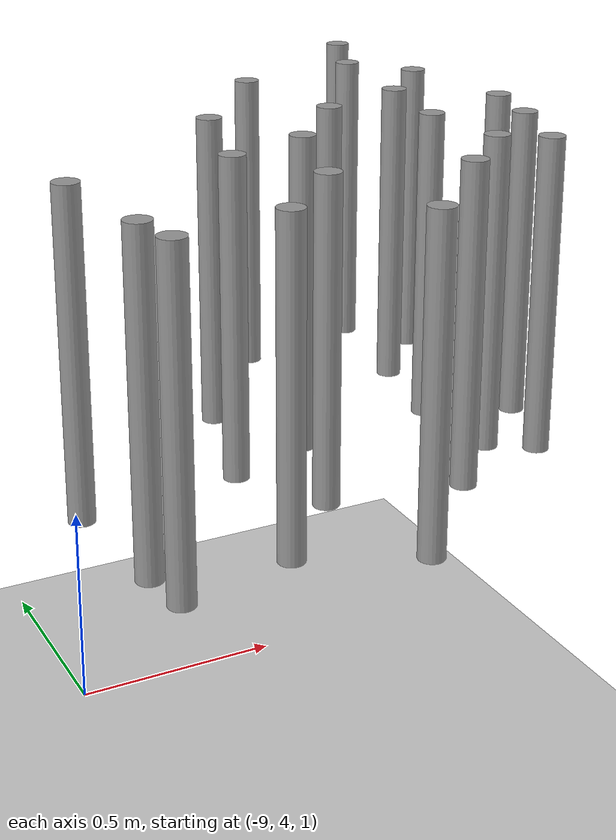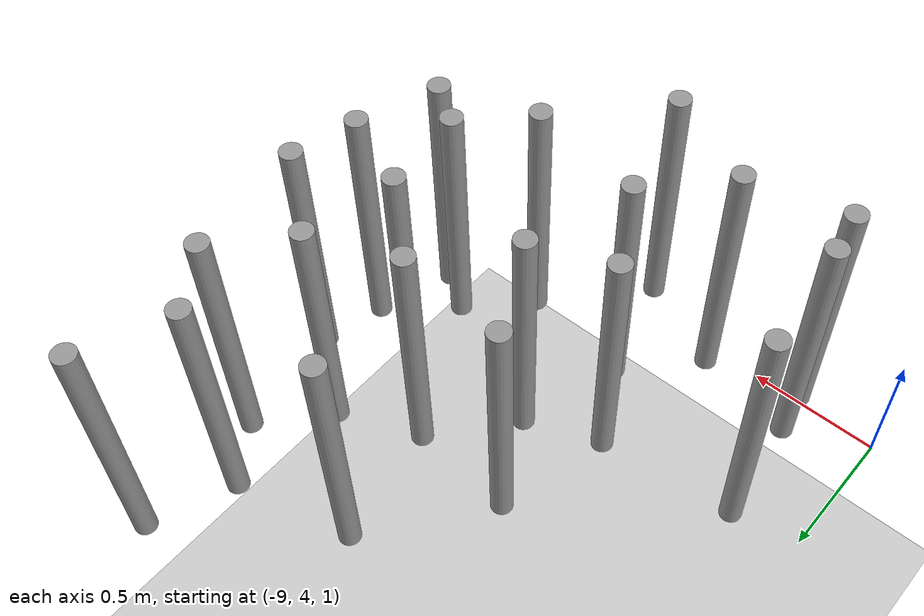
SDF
<sdf version="1.6">
 <world name="default">
  <model name="ground_plane">
   <static>1</static>
   <link name="link">
    <collision name="collision">
     <geometry><plane><normal>0 0 1</normal><size>100 100</size></plane></geometry>
     <surface>
      <contact><collide_bitmask>65535</collide_bitmask></contact>
      <friction><ode><mu>100</mu><mu2>50</mu2></ode></friction>
     </surface>
    </collision>
    <visual name="visual">
     <cast_shadows>0</cast_shadows>
     <geometry><plane><normal>0 0 1</normal><size>100 100</size></plane></geometry>
     <material>
      <script><uri>file://media/materials/scripts/gazebo.material</uri><name>Gazebo/Grey</name></script>
     </material>
    </visual>
   </link>
  </model>
  <model name="unit_cylinder_clone_16">
   <link name="link">
    <inertial>
     <mass>10000.1</mass>
     <inertia><ixx>837.395</ixx><ixy>0</ixy><ixz>0</ixz><iyy>837.395</iyy><iyz>0</iyz><izz>8.09922</izz></inertia>
    </inertial>
    <visual name="visual">
     <geometry><cylinder><radius>0.0402468</radius><length>1</length></cylinder></geometry>
     <material>
      <script><name>Gazebo/Grey</name><uri>file://media/materials/scripts/gazebo.material</uri></script>
      <shader type="vertex"><normal_map>__default__</normal_map></shader>
     </material>
    </visual>
    <collision name="collision">
     <geometry><cylinder><radius>0.040247</radius><length>1</length></cylinder></geometry>
     <surface>
      <friction>
       <ode><mu>1</mu><mu2>1</mu2><fdir1>0 0 0</fdir1><slip1>0</slip1><slip2>0</slip2></ode>
       <torsional>
        <coefficient>1</coefficient>
        <patch_radius>0</patch_radius>
        <surface_radius>0</surface_radius>
        <use_patch_radius>1</use_patch_radius>
        <ode><slip>0</slip></ode>
       </torsional>
      </friction>
      <bounce><restitution_coefficient>0</restitution_coefficient><threshold>1e+06</threshold></bounce>
      <contact>
       <collide_without_contact>0</collide_without_contact>
       <collide_without_contact_bitmask>1</collide_without_contact_bitmask>
       <collide_bitmask>1</collide_bitmask>
       <ode>
        <soft_cfm>0</soft_cfm>
        <soft_erp>0.2</soft_erp>
        <kp>1e+13</kp>
        <kd>1</kd>
        <max_vel>0.01</max_vel>
        <min_depth>0</min_depth>
       </ode>
       <bullet>
        <split_impulse>1</split_impulse>
        <split_impulse_penetration_threshold>-0.01</split_impulse_penetration_threshold>
        <soft_cfm>0</soft_cfm>
        <soft_erp>0.2</soft_erp>
        <kp>1e+13</kp>
        <kd>1</kd>
       </bullet>
      </contact>
     </surface>
    </collision>
   </link>
   <static>0</static>
   <pose>-7.3486 4.45543 1.63725 0 1e-06 -0.000391</pose>
  </model>
  <model name="unit_cylinder_clone_16_clone">
   <link name="link">
    <inertial>
     <mass>10000.1</mass>
     <inertia><ixx>837.395</ixx><ixy>0</ixy><ixz>0</ixz><iyy>837.395</iyy><iyz>0</iyz><izz>8.09922</izz></inertia>
    </inertial>
    <visual name="visual">
     <geometry><cylinder><radius>0.0402468</radius><length>1</length></cylinder></geometry>
     <material>
      <script><name>Gazebo/Grey</name><uri>file://media/materials/scripts/gazebo.material</uri></script>
      <shader type="vertex"><normal_map>__default__</normal_map></shader>
     </material>
    </visual>
    <collision name="collision">
     <geometry><cylinder><radius>0.040247</radius><length>1</length></cylinder></geometry>
     <surface>
      <friction>
       <ode><mu>1</mu><mu2>1</mu2><fdir1>0 0 0</fdir1><slip1>0</slip1><slip2>0</slip2></ode>
       <torsional>
        <coefficient>1</coefficient>
        <patch_radius>0</patch_radius>
        <surface_radius>0</surface_radius>
        <use_patch_radius>1</use_patch_radius>
        <ode><slip>0</slip></ode>
       </torsional>
      </friction>
      <bounce><restitution_coefficient>0</restitution_coefficient><threshold>1e+06</threshold></bounce>
      <contact>
       <collide_without_contact>0</collide_without_contact>
       <collide_without_contact_bitmask>1</collide_without_contact_bitmask>
       <collide_bitmask>1</collide_bitmask>
       <ode>
        <soft_cfm>0</soft_cfm>
        <soft_erp>0.2</soft_erp>
        <kp>1e+13</kp>
        <kd>1</kd>
        <max_vel>0.01</max_vel>
        <min_depth>0</min_depth>
       </ode>
       <bullet>
        <split_impulse>1</split_impulse>
        <split_impulse_penetration_threshold>-0.01</split_impulse_penetration_threshold>
        <soft_cfm>0</soft_cfm>
        <soft_erp>0.2</soft_erp>
        <kp>1e+13</kp>
        <kd>1</kd>
       </bullet>
      </contact>
     </surface>
    </collision>
   </link>
   <static>0</static>
   <pose>-8.77538 4.62833 1.63725 -1e-06 9e-06 -0.000754</pose>
  </model>
  <model name="unit_cylinder_clone_16_clone_0">
   <link name="link">
    <inertial>
     <mass>10000.1</mass>
     <inertia><ixx>837.395</ixx><ixy>0</ixy><ixz>0</ixz><iyy>837.395</iyy><iyz>0</iyz><izz>8.09922</izz></inertia>
    </inertial>
    <visual name="visual">
     <geometry><cylinder><radius>0.0402468</radius><length>1</length></cylinder></geometry>
     <material>
      <script><name>Gazebo/Grey</name><uri>file://media/materials/scripts/gazebo.material</uri></script>
      <shader type="vertex"><normal_map>__default__</normal_map></shader>
     </material>
    </visual>
    <collision name="collision">
     <geometry><cylinder><radius>0.040247</radius><length>1</length></cylinder></geometry>
     <surface>
      <friction>
       <ode><mu>1</mu><mu2>1</mu2><fdir1>0 0 0</fdir1><slip1>0</slip1><slip2>0</slip2></ode>
       <torsional>
        <coefficient>1</coefficient>
        <patch_radius>0</patch_radius>
        <surface_radius>0</surface_radius>
        <use_patch_radius>1</use_patch_radius>
        <ode><slip>0</slip></ode>
       </torsional>
      </friction>
      <bounce><restitution_coefficient>0</restitution_coefficient><threshold>1e+06</threshold></bounce>
      <contact>
       <collide_without_contact>0</collide_without_contact>
       <collide_without_contact_bitmask>1</collide_without_contact_bitmask>
       <collide_bitmask>1</collide_bitmask>
       <ode>
        <soft_cfm>0</soft_cfm>
        <soft_erp>0.2</soft_erp>
        <kp>1e+13</kp>
        <kd>1</kd>
        <max_vel>0.01</max_vel>
        <min_depth>0</min_depth>
       </ode>
       <bullet>
        <split_impulse>1</split_impulse>
        <split_impulse_penetration_threshold>-0.01</split_impulse_penetration_threshold>
        <soft_cfm>0</soft_cfm>
        <soft_erp>0.2</soft_erp>
        <kp>1e+13</kp>
        <kd>1</kd>
       </bullet>
      </contact>
     </surface>
    </collision>
   </link>
   <static>0</static>
   <pose>-8.26675 4.68609 1.63725 -0 -2e-06 -0.000138</pose>
  </model>
  <model name="unit_cylinder_clone_16_clone_1">
   <link name="link">
    <inertial>
     <mass>10000.1</mass>
     <inertia><ixx>837.395</ixx><ixy>0</ixy><ixz>0</ixz><iyy>837.395</iyy><iyz>0</iyz><izz>8.09922</izz></inertia>
    </inertial>
    <visual name="visual">
     <geometry><cylinder><radius>0.0402468</radius><length>1</length></cylinder></geometry>
     <material>
      <script><name>Gazebo/Grey</name><uri>file://media/materials/scripts/gazebo.material</uri></script>
      <shader type="vertex"><normal_map>__default__</normal_map></shader>
     </material>
    </visual>
    <collision name="collision">
     <geometry><cylinder><radius>0.040247</radius><length>1</length></cylinder></geometry>
     <surface>
      <friction>
       <ode><mu>1</mu><mu2>1</mu2><fdir1>0 0 0</fdir1><slip1>0</slip1><slip2>0</slip2></ode>
       <torsional>
        <coefficient>1</coefficient>
        <patch_radius>0</patch_radius>
        <surface_radius>0</surface_radius>
        <use_patch_radius>1</use_patch_radius>
        <ode><slip>0</slip></ode>
       </torsional>
      </friction>
      <bounce><restitution_coefficient>0</restitution_coefficient><threshold>1e+06</threshold></bounce>
      <contact>
       <collide_without_contact>0</collide_without_contact>
       <collide_without_contact_bitmask>1</collide_without_contact_bitmask>
       <collide_bitmask>1</collide_bitmask>
       <ode>
        <soft_cfm>0</soft_cfm>
        <soft_erp>0.2</soft_erp>
        <kp>1e+13</kp>
        <kd>1</kd>
        <max_vel>0.01</max_vel>
        <min_depth>0</min_depth>
       </ode>
       <bullet>
        <split_impulse>1</split_impulse>
        <split_impulse_penetration_threshold>-0.01</split_impulse_penetration_threshold>
        <soft_cfm>0</soft_cfm>
        <soft_erp>0.2</soft_erp>
        <kp>1e+13</kp>
        <kd>1</kd>
       </bullet>
      </contact>
     </surface>
    </collision>
   </link>
   <static>0</static>
   <pose>-7.51513 4.85463 1.63725 0 1e-06 -0.0007</pose>
  </model>
  <model name="unit_cylinder_clone_16_clone_2">
   <link name="link">
    <inertial>
     <mass>10000.1</mass>
     <inertia><ixx>837.395</ixx><ixy>0</ixy><ixz>0</ixz><iyy>837.395</iyy><iyz>0</iyz><izz>8.09922</izz></inertia>
    </inertial>
    <visual name="visual">
     <geometry><cylinder><radius>0.0402468</radius><length>1</length></cylinder></geometry>
     <material>
      <script><name>Gazebo/Grey</name><uri>file://media/materials/scripts/gazebo.material</uri></script>
      <shader type="vertex"><normal_map>__default__</normal_map></shader>
     </material>
    </visual>
    <collision name="collision">
     <geometry><cylinder><radius>0.040247</radius><length>1</length></cylinder></geometry>
     <surface>
      <friction>
       <ode><mu>1</mu><mu2>1</mu2><fdir1>0 0 0</fdir1><slip1>0</slip1><slip2>0</slip2></ode>
       <torsional>
        <coefficient>1</coefficient>
        <patch_radius>0</patch_radius>
        <surface_radius>0</surface_radius>
        <use_patch_radius>1</use_patch_radius>
        <ode><slip>0</slip></ode>
       </torsional>
      </friction>
      <bounce><restitution_coefficient>0</restitution_coefficient><threshold>1e+06</threshold></bounce>
      <contact>
       <collide_without_contact>0</collide_without_contact>
       <collide_without_contact_bitmask>1</collide_without_contact_bitmask>
       <collide_bitmask>1</collide_bitmask>
       <ode>
        <soft_cfm>0</soft_cfm>
        <soft_erp>0.2</soft_erp>
        <kp>1e+13</kp>
        <kd>1</kd>
        <max_vel>0.01</max_vel>
        <min_depth>0</min_depth>
       </ode>
       <bullet>
        <split_impulse>1</split_impulse>
        <split_impulse_penetration_threshold>-0.01</split_impulse_penetration_threshold>
        <soft_cfm>0</soft_cfm>
        <soft_erp>0.2</soft_erp>
        <kp>1e+13</kp>
        <kd>1</kd>
       </bullet>
      </contact>
     </surface>
    </collision>
   </link>
   <static>0</static>
   <pose>-8.15207 5.10482 1.63725 -0 -2e-06 -0.000138</pose>
  </model>
  <model name="unit_cylinder_clone_16_clone_3">
   <link name="link">
    <inertial>
     <mass>10000.1</mass>
     <inertia><ixx>837.395</ixx><ixy>0</ixy><ixz>0</ixz><iyy>837.395</iyy><iyz>0</iyz><izz>8.09922</izz></inertia>
    </inertial>
    <visual name="visual">
     <geometry><cylinder><radius>0.0402468</radius><length>1</length></cylinder></geometry>
     <material>
      <script><name>Gazebo/Grey</name><uri>file://media/materials/scripts/gazebo.material</uri></script>
      <shader type="vertex"><normal_map>__default__</normal_map></shader>
     </material>
    </visual>
    <collision name="collision">
     <geometry><cylinder><radius>0.040247</radius><length>1</length></cylinder></geometry>
     <surface>
      <friction>
       <ode><mu>1</mu><mu2>1</mu2><fdir1>0 0 0</fdir1><slip1>0</slip1><slip2>0</slip2></ode>
       <torsional>
        <coefficient>1</coefficient>
        <patch_radius>0</patch_radius>
        <surface_radius>0</surface_radius>
        <use_patch_radius>1</use_patch_radius>
        <ode><slip>0</slip></ode>
       </torsional>
      </friction>
      <bounce><restitution_coefficient>0</restitution_coefficient><threshold>1e+06</threshold></bounce>
      <contact>
       <collide_without_contact>0</collide_without_contact>
       <collide_without_contact_bitmask>1</collide_without_contact_bitmask>
       <collide_bitmask>1</collide_bitmask>
       <ode>
        <soft_cfm>0</soft_cfm>
        <soft_erp>0.2</soft_erp>
        <kp>1e+13</kp>
        <kd>1</kd>
        <max_vel>0.01</max_vel>
        <min_depth>0</min_depth>
       </ode>
       <bullet>
        <split_impulse>1</split_impulse>
        <split_impulse_penetration_threshold>-0.01</split_impulse_penetration_threshold>
        <soft_cfm>0</soft_cfm>
        <soft_erp>0.2</soft_erp>
        <kp>1e+13</kp>
        <kd>1</kd>
       </bullet>
      </contact>
     </surface>
    </collision>
   </link>
   <static>0</static>
   <pose>-7.75658 5.07348 1.63725 -0 2e-06 -0.000198</pose>
  </model>
  <model name="unit_cylinder_clone_16_clone_4">
   <link name="link">
    <inertial>
     <mass>10000.1</mass>
     <inertia><ixx>837.395</ixx><ixy>0</ixy><ixz>0</ixz><iyy>837.395</iyy><iyz>0</iyz><izz>8.09922</izz></inertia>
    </inertial>
    <visual name="visual">
     <geometry><cylinder><radius>0.0402468</radius><length>1</length></cylinder></geometry>
     <material>
      <script><name>Gazebo/Grey</name><uri>file://media/materials/scripts/gazebo.material</uri></script>
      <shader type="vertex"><normal_map>__default__</normal_map></shader>
     </material>
    </visual>
    <collision name="collision">
     <geometry><cylinder><radius>0.040247</radius><length>1</length></cylinder></geometry>
     <surface>
      <friction>
       <ode><mu>1</mu><mu2>1</mu2><fdir1>0 0 0</fdir1><slip1>0</slip1><slip2>0</slip2></ode>
       <torsional>
        <coefficient>1</coefficient>
        <patch_radius>0</patch_radius>
        <surface_radius>0</surface_radius>
        <use_patch_radius>1</use_patch_radius>
        <ode><slip>0</slip></ode>
       </torsional>
      </friction>
      <bounce><restitution_coefficient>0</restitution_coefficient><threshold>1e+06</threshold></bounce>
      <contact>
       <collide_without_contact>0</collide_without_contact>
       <collide_without_contact_bitmask>1</collide_without_contact_bitmask>
       <collide_bitmask>1</collide_bitmask>
       <ode>
        <soft_cfm>0</soft_cfm>
        <soft_erp>0.2</soft_erp>
        <kp>1e+13</kp>
        <kd>1</kd>
        <max_vel>0.01</max_vel>
        <min_depth>0</min_depth>
       </ode>
       <bullet>
        <split_impulse>1</split_impulse>
        <split_impulse_penetration_threshold>-0.01</split_impulse_penetration_threshold>
        <soft_cfm>0</soft_cfm>
        <soft_erp>0.2</soft_erp>
        <kp>1e+13</kp>
        <kd>1</kd>
       </bullet>
      </contact>
     </surface>
    </collision>
   </link>
   <static>0</static>
   <pose>-7.99203 4.79193 1.63725 1e-06 -1e-06 -0.000676</pose>
  </model>
  <model name="unit_cylinder_clone_16_clone_5">
   <link name="link">
    <inertial>
     <mass>10000.1</mass>
     <inertia><ixx>837.395</ixx><ixy>0</ixy><ixz>0</ixz><iyy>837.395</iyy><iyz>0</iyz><izz>8.09922</izz></inertia>
    </inertial>
    <visual name="visual">
     <geometry><cylinder><radius>0.0402468</radius><length>1</length></cylinder></geometry>
     <material>
      <script><name>Gazebo/Grey</name><uri>file://media/materials/scripts/gazebo.material</uri></script>
      <shader type="vertex"><normal_map>__default__</normal_map></shader>
     </material>
    </visual>
    <collision name="collision">
     <geometry><cylinder><radius>0.040247</radius><length>1</length></cylinder></geometry>
     <surface>
      <friction>
       <ode><mu>1</mu><mu2>1</mu2><fdir1>0 0 0</fdir1><slip1>0</slip1><slip2>0</slip2></ode>
       <torsional>
        <coefficient>1</coefficient>
        <patch_radius>0</patch_radius>
        <surface_radius>0</surface_radius>
        <use_patch_radius>1</use_patch_radius>
        <ode><slip>0</slip></ode>
       </torsional>
      </friction>
      <bounce><restitution_coefficient>0</restitution_coefficient><threshold>1e+06</threshold></bounce>
      <contact>
       <collide_without_contact>0</collide_without_contact>
       <collide_without_contact_bitmask>1</collide_without_contact_bitmask>
       <collide_bitmask>1</collide_bitmask>
       <ode>
        <soft_cfm>0</soft_cfm>
        <soft_erp>0.2</soft_erp>
        <kp>1e+13</kp>
        <kd>1</kd>
        <max_vel>0.01</max_vel>
        <min_depth>0</min_depth>
       </ode>
       <bullet>
        <split_impulse>1</split_impulse>
        <split_impulse_penetration_threshold>-0.01</split_impulse_penetration_threshold>
        <soft_cfm>0</soft_cfm>
        <soft_erp>0.2</soft_erp>
        <kp>1e+13</kp>
        <kd>1</kd>
       </bullet>
      </contact>
     </surface>
    </collision>
   </link>
   <static>0</static>
   <pose>-7.48047 4.54281 1.63725 -1e-06 1e-06 -0.000569</pose>
  </model>
  <model name="unit_cylinder_clone_16_clone_6">
   <link name="link">
    <inertial>
     <mass>10000.1</mass>
     <inertia><ixx>837.395</ixx><ixy>0</ixy><ixz>0</ixz><iyy>837.395</iyy><iyz>0</iyz><izz>8.09922</izz></inertia>
    </inertial>
    <visual name="visual">
     <geometry><cylinder><radius>0.0402468</radius><length>1</length></cylinder></geometry>
     <material>
      <script><name>Gazebo/Grey</name><uri>file://media/materials/scripts/gazebo.material</uri></script>
      <shader type="vertex"><normal_map>__default__</normal_map></shader>
     </material>
    </visual>
    <collision name="collision">
     <geometry><cylinder><radius>0.040247</radius><length>1</length></cylinder></geometry>
     <surface>
      <friction>
       <ode><mu>1</mu><mu2>1</mu2><fdir1>0 0 0</fdir1><slip1>0</slip1><slip2>0</slip2></ode>
       <torsional>
        <coefficient>1</coefficient>
        <patch_radius>0</patch_radius>
        <surface_radius>0</surface_radius>
        <use_patch_radius>1</use_patch_radius>
        <ode><slip>0</slip></ode>
       </torsional>
      </friction>
      <bounce><restitution_coefficient>0</restitution_coefficient><threshold>1e+06</threshold></bounce>
      <contact>
       <collide_without_contact>0</collide_without_contact>
       <collide_without_contact_bitmask>1</collide_without_contact_bitmask>
       <collide_bitmask>1</collide_bitmask>
       <ode>
        <soft_cfm>0</soft_cfm>
        <soft_erp>0.2</soft_erp>
        <kp>1e+13</kp>
        <kd>1</kd>
        <max_vel>0.01</max_vel>
        <min_depth>0</min_depth>
       </ode>
       <bullet>
        <split_impulse>1</split_impulse>
        <split_impulse_penetration_threshold>-0.01</split_impulse_penetration_threshold>
        <soft_cfm>0</soft_cfm>
        <soft_erp>0.2</soft_erp>
        <kp>1e+13</kp>
        <kd>1</kd>
       </bullet>
      </contact>
     </surface>
    </collision>
   </link>
   <static>0</static>
   <pose>-8.10977 4.40716 1.63725 -1e-06 -0 -0.000336</pose>
  </model>
  <model name="unit_cylinder_clone_16_clone_7">
   <link name="link">
    <inertial>
     <mass>10000.1</mass>
     <inertia><ixx>837.395</ixx><ixy>0</ixy><ixz>0</ixz><iyy>837.395</iyy><iyz>0</iyz><izz>8.09922</izz></inertia>
    </inertial>
    <visual name="visual">
     <geometry><cylinder><radius>0.0402468</radius><length>1</length></cylinder></geometry>
     <material>
      <script><name>Gazebo/Grey</name><uri>file://media/materials/scripts/gazebo.material</uri></script>
      <shader type="vertex"><normal_map>__default__</normal_map></shader>
     </material>
    </visual>
    <collision name="collision">
     <geometry><cylinder><radius>0.040247</radius><length>1</length></cylinder></geometry>
     <surface>
      <friction>
       <ode><mu>1</mu><mu2>1</mu2><fdir1>0 0 0</fdir1><slip1>0</slip1><slip2>0</slip2></ode>
       <torsional>
        <coefficient>1</coefficient>
        <patch_radius>0</patch_radius>
        <surface_radius>0</surface_radius>
        <use_patch_radius>1</use_patch_radius>
        <ode><slip>0</slip></ode>
       </torsional>
      </friction>
      <bounce><restitution_coefficient>0</restitution_coefficient><threshold>1e+06</threshold></bounce>
      <contact>
       <collide_without_contact>0</collide_without_contact>
       <collide_without_contact_bitmask>1</collide_without_contact_bitmask>
       <collide_bitmask>1</collide_bitmask>
       <ode>
        <soft_cfm>0</soft_cfm>
        <soft_erp>0.2</soft_erp>
        <kp>1e+13</kp>
        <kd>1</kd>
        <max_vel>0.01</max_vel>
        <min_depth>0</min_depth>
       </ode>
       <bullet>
        <split_impulse>1</split_impulse>
        <split_impulse_penetration_threshold>-0.01</split_impulse_penetration_threshold>
        <soft_cfm>0</soft_cfm>
        <soft_erp>0.2</soft_erp>
        <kp>1e+13</kp>
        <kd>1</kd>
       </bullet>
      </contact>
     </surface>
    </collision>
   </link>
   <static>0</static>
   <pose>-7.68692 4.33819 1.63725 1e-06 2e-06 -0.000576</pose>
  </model>
  <model name="unit_cylinder_clone_16_clone_8">
   <link name="link">
    <inertial>
     <mass>10000.1</mass>
     <inertia><ixx>837.395</ixx><ixy>0</ixy><ixz>0</ixz><iyy>837.395</iyy><iyz>0</iyz><izz>8.09922</izz></inertia>
    </inertial>
    <visual name="visual">
     <geometry><cylinder><radius>0.0402468</radius><length>1</length></cylinder></geometry>
     <material>
      <script><name>Gazebo/Grey</name><uri>file://media/materials/scripts/gazebo.material</uri></script>
      <shader type="vertex"><normal_map>__default__</normal_map></shader>
     </material>
    </visual>
    <collision name="collision">
     <geometry><cylinder><radius>0.040247</radius><length>1</length></cylinder></geometry>
     <surface>
      <friction>
       <ode><mu>1</mu><mu2>1</mu2><fdir1>0 0 0</fdir1><slip1>0</slip1><slip2>0</slip2></ode>
       <torsional>
        <coefficient>1</coefficient>
        <patch_radius>0</patch_radius>
        <surface_radius>0</surface_radius>
        <use_patch_radius>1</use_patch_radius>
        <ode><slip>0</slip></ode>
       </torsional>
      </friction>
      <bounce><restitution_coefficient>0</restitution_coefficient><threshold>1e+06</threshold></bounce>
      <contact>
       <collide_without_contact>0</collide_without_contact>
       <collide_without_contact_bitmask>1</collide_without_contact_bitmask>
       <collide_bitmask>1</collide_bitmask>
       <ode>
        <soft_cfm>0</soft_cfm>
        <soft_erp>0.2</soft_erp>
        <kp>1e+13</kp>
        <kd>1</kd>
        <max_vel>0.01</max_vel>
        <min_depth>0</min_depth>
       </ode>
       <bullet>
        <split_impulse>1</split_impulse>
        <split_impulse_penetration_threshold>-0.01</split_impulse_penetration_threshold>
        <soft_cfm>0</soft_cfm>
        <soft_erp>0.2</soft_erp>
        <kp>1e+13</kp>
        <kd>1</kd>
       </bullet>
      </contact>
     </surface>
    </collision>
   </link>
   <static>0</static>
   <pose>-8 4 1.63725 1e-06 -1e-06 -0.000778</pose>
  </model>
  <model name="unit_cylinder_clone_16_clone_9">
   <link name="link">
    <inertial>
     <mass>10000.1</mass>
     <inertia><ixx>837.395</ixx><ixy>0</ixy><ixz>0</ixz><iyy>837.395</iyy><iyz>0</iyz><izz>8.09922</izz></inertia>
    </inertial>
    <visual name="visual">
     <geometry><cylinder><radius>0.0402468</radius><length>1</length></cylinder></geometry>
     <material>
      <script><name>Gazebo/Grey</name><uri>file://media/materials/scripts/gazebo.material</uri></script>
      <shader type="vertex"><normal_map>__default__</normal_map></shader>
     </material>
    </visual>
    <collision name="collision">
     <geometry><cylinder><radius>0.040247</radius><length>1</length></cylinder></geometry>
     <surface>
      <friction>
       <ode><mu>1</mu><mu2>1</mu2><fdir1>0 0 0</fdir1><slip1>0</slip1><slip2>0</slip2></ode>
       <torsional>
        <coefficient>1</coefficient>
        <patch_radius>0</patch_radius>
        <surface_radius>0</surface_radius>
        <use_patch_radius>1</use_patch_radius>
        <ode><slip>0</slip></ode>
       </torsional>
      </friction>
      <bounce><restitution_coefficient>0</restitution_coefficient><threshold>1e+06</threshold></bounce>
      <contact>
       <collide_without_contact>0</collide_without_contact>
       <collide_without_contact_bitmask>1</collide_without_contact_bitmask>
       <collide_bitmask>1</collide_bitmask>
       <ode>
        <soft_cfm>0</soft_cfm>
        <soft_erp>0.2</soft_erp>
        <kp>1e+13</kp>
        <kd>1</kd>
        <max_vel>0.01</max_vel>
        <min_depth>0</min_depth>
       </ode>
       <bullet>
        <split_impulse>1</split_impulse>
        <split_impulse_penetration_threshold>-0.01</split_impulse_penetration_threshold>
        <soft_cfm>0</soft_cfm>
        <soft_erp>0.2</soft_erp>
        <kp>1e+13</kp>
        <kd>1</kd>
       </bullet>
      </contact>
     </surface>
    </collision>
   </link>
   <static>0</static>
   <pose>-8.70341 4.07412 1.63725 -1e-06 -0 -0.000336</pose>
  </model>
  <model name="unit_cylinder_clone_16_clone_10">
   <link name="link">
    <inertial>
     <mass>10000.1</mass>
     <inertia><ixx>837.395</ixx><ixy>0</ixy><ixz>0</ixz><iyy>837.395</iyy><iyz>0</iyz><izz>8.09922</izz></inertia>
    </inertial>
    <visual name="visual">
     <geometry><cylinder><radius>0.0402468</radius><length>1</length></cylinder></geometry>
     <material>
      <script><name>Gazebo/Grey</name><uri>file://media/materials/scripts/gazebo.material</uri></script>
      <shader type="vertex"><normal_map>__default__</normal_map></shader>
     </material>
    </visual>
    <collision name="collision">
     <geometry><cylinder><radius>0.040247</radius><length>1</length></cylinder></geometry>
     <surface>
      <friction>
       <ode><mu>1</mu><mu2>1</mu2><fdir1>0 0 0</fdir1><slip1>0</slip1><slip2>0</slip2></ode>
       <torsional>
        <coefficient>1</coefficient>
        <patch_radius>0</patch_radius>
        <surface_radius>0</surface_radius>
        <use_patch_radius>1</use_patch_radius>
        <ode><slip>0</slip></ode>
       </torsional>
      </friction>
      <bounce><restitution_coefficient>0</restitution_coefficient><threshold>1e+06</threshold></bounce>
      <contact>
       <collide_without_contact>0</collide_without_contact>
       <collide_without_contact_bitmask>1</collide_without_contact_bitmask>
       <collide_bitmask>1</collide_bitmask>
       <ode>
        <soft_cfm>0</soft_cfm>
        <soft_erp>0.2</soft_erp>
        <kp>1e+13</kp>
        <kd>1</kd>
        <max_vel>0.01</max_vel>
        <min_depth>0</min_depth>
       </ode>
       <bullet>
        <split_impulse>1</split_impulse>
        <split_impulse_penetration_threshold>-0.01</split_impulse_penetration_threshold>
        <soft_cfm>0</soft_cfm>
        <soft_erp>0.2</soft_erp>
        <kp>1e+13</kp>
        <kd>1</kd>
       </bullet>
      </contact>
     </surface>
    </collision>
   </link>
   <static>0</static>
   <pose>-8.72926 4.2303 1.63725 0 1e-06 -0.000705</pose>
  </model>
  <model name="unit_cylinder_clone_16_clone_11">
   <link name="link">
    <inertial>
     <mass>10000.1</mass>
     <inertia><ixx>837.395</ixx><ixy>0</ixy><ixz>0</ixz><iyy>837.395</iyy><iyz>0</iyz><izz>8.09922</izz></inertia>
    </inertial>
    <visual name="visual">
     <geometry><cylinder><radius>0.0402468</radius><length>1</length></cylinder></geometry>
     <material>
      <script><name>Gazebo/Grey</name><uri>file://media/materials/scripts/gazebo.material</uri></script>
      <shader type="vertex"><normal_map>__default__</normal_map></shader>
     </material>
    </visual>
    <collision name="collision">
     <geometry><cylinder><radius>0.040247</radius><length>1</length></cylinder></geometry>
     <surface>
      <friction>
       <ode><mu>1</mu><mu2>1</mu2><fdir1>0 0 0</fdir1><slip1>0</slip1><slip2>0</slip2></ode>
       <torsional>
        <coefficient>1</coefficient>
        <patch_radius>0</patch_radius>
        <surface_radius>0</surface_radius>
        <use_patch_radius>1</use_patch_radius>
        <ode><slip>0</slip></ode>
       </torsional>
      </friction>
      <bounce><restitution_coefficient>0</restitution_coefficient><threshold>1e+06</threshold></bounce>
      <contact>
       <collide_without_contact>0</collide_without_contact>
       <collide_without_contact_bitmask>1</collide_without_contact_bitmask>
       <collide_bitmask>1</collide_bitmask>
       <ode>
        <soft_cfm>0</soft_cfm>
        <soft_erp>0.2</soft_erp>
        <kp>1e+13</kp>
        <kd>1</kd>
        <max_vel>0.01</max_vel>
        <min_depth>0</min_depth>
       </ode>
       <bullet>
        <split_impulse>1</split_impulse>
        <split_impulse_penetration_threshold>-0.01</split_impulse_penetration_threshold>
        <soft_cfm>0</soft_cfm>
        <soft_erp>0.2</soft_erp>
        <kp>1e+13</kp>
        <kd>1</kd>
       </bullet>
      </contact>
     </surface>
    </collision>
   </link>
   <static>0</static>
   <pose>-8.34782 4.15429 1.63725 -1e-06 -0 -0.000503</pose>
  </model>
  <model name="unit_cylinder_clone_16_clone_12">
   <link name="link">
    <inertial>
     <mass>10000.1</mass>
     <inertia><ixx>837.395</ixx><ixy>0</ixy><ixz>0</ixz><iyy>837.395</iyy><iyz>0</iyz><izz>8.09922</izz></inertia>
    </inertial>
    <visual name="visual">
     <geometry><cylinder><radius>0.0402468</radius><length>1</length></cylinder></geometry>
     <material>
      <script><name>Gazebo/Grey</name><uri>file://media/materials/scripts/gazebo.material</uri></script>
      <shader type="vertex"><normal_map>__default__</normal_map></shader>
     </material>
    </visual>
    <collision name="collision">
     <geometry><cylinder><radius>0.040247</radius><length>1</length></cylinder></geometry>
     <surface>
      <friction>
       <ode><mu>1</mu><mu2>1</mu2><fdir1>0 0 0</fdir1><slip1>0</slip1><slip2>0</slip2></ode>
       <torsional>
        <coefficient>1</coefficient>
        <patch_radius>0</patch_radius>
        <surface_radius>0</surface_radius>
        <use_patch_radius>1</use_patch_radius>
        <ode><slip>0</slip></ode>
       </torsional>
      </friction>
      <bounce><restitution_coefficient>0</restitution_coefficient><threshold>1e+06</threshold></bounce>
      <contact>
       <collide_without_contact>0</collide_without_contact>
       <collide_without_contact_bitmask>1</collide_without_contact_bitmask>
       <collide_bitmask>1</collide_bitmask>
       <ode>
        <soft_cfm>0</soft_cfm>
        <soft_erp>0.2</soft_erp>
        <kp>1e+13</kp>
        <kd>1</kd>
        <max_vel>0.01</max_vel>
        <min_depth>0</min_depth>
       </ode>
       <bullet>
        <split_impulse>1</split_impulse>
        <split_impulse_penetration_threshold>-0.01</split_impulse_penetration_threshold>
        <soft_cfm>0</soft_cfm>
        <soft_erp>0.2</soft_erp>
        <kp>1e+13</kp>
        <kd>1</kd>
       </bullet>
      </contact>
     </surface>
    </collision>
   </link>
   <static>0</static>
   <pose>-7.24783 4.7443 1.63725 -1e-06 1e-06 -0.000569</pose>
  </model>
  <model name="unit_cylinder_clone_16_clone_13">
   <link name="link">
    <inertial>
     <mass>10000.1</mass>
     <inertia><ixx>837.395</ixx><ixy>0</ixy><ixz>0</ixz><iyy>837.395</iyy><iyz>0</iyz><izz>8.09922</izz></inertia>
    </inertial>
    <visual name="visual">
     <geometry><cylinder><radius>0.0402468</radius><length>1</length></cylinder></geometry>
     <material>
      <script><name>Gazebo/Grey</name><uri>file://media/materials/scripts/gazebo.material</uri></script>
      <shader type="vertex"><normal_map>__default__</normal_map></shader>
     </material>
    </visual>
    <collision name="collision">
     <geometry><cylinder><radius>0.040247</radius><length>1</length></cylinder></geometry>
     <surface>
      <friction>
       <ode><mu>1</mu><mu2>1</mu2><fdir1>0 0 0</fdir1><slip1>0</slip1><slip2>0</slip2></ode>
       <torsional>
        <coefficient>1</coefficient>
        <patch_radius>0</patch_radius>
        <surface_radius>0</surface_radius>
        <use_patch_radius>1</use_patch_radius>
        <ode><slip>0</slip></ode>
       </torsional>
      </friction>
      <bounce><restitution_coefficient>0</restitution_coefficient><threshold>1e+06</threshold></bounce>
      <contact>
       <collide_without_contact>0</collide_without_contact>
       <collide_without_contact_bitmask>1</collide_without_contact_bitmask>
       <collide_bitmask>1</collide_bitmask>
       <ode>
        <soft_cfm>0</soft_cfm>
        <soft_erp>0.2</soft_erp>
        <kp>1e+13</kp>
        <kd>1</kd>
        <max_vel>0.01</max_vel>
        <min_depth>0</min_depth>
       </ode>
       <bullet>
        <split_impulse>1</split_impulse>
        <split_impulse_penetration_threshold>-0.01</split_impulse_penetration_threshold>
        <soft_cfm>0</soft_cfm>
        <soft_erp>0.2</soft_erp>
        <kp>1e+13</kp>
        <kd>1</kd>
       </bullet>
      </contact>
     </surface>
    </collision>
   </link>
   <static>0</static>
   <pose>-7.4541 5.19396 1.63725 5e-06 3e-06 -0.000687</pose>
  </model>
  <model name="unit_cylinder_clone_16_clone_14">
   <link name="link">
    <inertial>
     <mass>10000.1</mass>
     <inertia><ixx>837.395</ixx><ixy>0</ixy><ixz>0</ixz><iyy>837.395</iyy><iyz>0</iyz><izz>8.09922</izz></inertia>
    </inertial>
    <visual name="visual">
     <geometry><cylinder><radius>0.0402468</radius><length>1</length></cylinder></geometry>
     <material>
      <script><name>Gazebo/Grey</name><uri>file://media/materials/scripts/gazebo.material</uri></script>
      <shader type="vertex"><normal_map>__default__</normal_map></shader>
     </material>
    </visual>
    <collision name="collision">
     <geometry><cylinder><radius>0.040247</radius><length>1</length></cylinder></geometry>
     <surface>
      <friction>
       <ode><mu>1</mu><mu2>1</mu2><fdir1>0 0 0</fdir1><slip1>0</slip1><slip2>0</slip2></ode>
       <torsional>
        <coefficient>1</coefficient>
        <patch_radius>0</patch_radius>
        <surface_radius>0</surface_radius>
        <use_patch_radius>1</use_patch_radius>
        <ode><slip>0</slip></ode>
       </torsional>
      </friction>
      <bounce><restitution_coefficient>0</restitution_coefficient><threshold>1e+06</threshold></bounce>
      <contact>
       <collide_without_contact>0</collide_without_contact>
       <collide_without_contact_bitmask>1</collide_without_contact_bitmask>
       <collide_bitmask>1</collide_bitmask>
       <ode>
        <soft_cfm>0</soft_cfm>
        <soft_erp>0.2</soft_erp>
        <kp>1e+13</kp>
        <kd>1</kd>
        <max_vel>0.01</max_vel>
        <min_depth>0</min_depth>
       </ode>
       <bullet>
        <split_impulse>1</split_impulse>
        <split_impulse_penetration_threshold>-0.01</split_impulse_penetration_threshold>
        <soft_cfm>0</soft_cfm>
        <soft_erp>0.2</soft_erp>
        <kp>1e+13</kp>
        <kd>1</kd>
       </bullet>
      </contact>
     </surface>
    </collision>
   </link>
   <static>0</static>
   <pose>-7.83085 5.5223 1.63725 -1e-06 -0 -0.000583</pose>
  </model>
  <model name="unit_cylinder_clone_16_clone_16">
   <link name="link">
    <inertial>
     <mass>10000.1</mass>
     <inertia><ixx>837.395</ixx><ixy>0</ixy><ixz>0</ixz><iyy>837.395</iyy><iyz>0</iyz><izz>8.09922</izz></inertia>
    </inertial>
    <visual name="visual">
     <geometry><cylinder><radius>0.0402468</radius><length>1</length></cylinder></geometry>
     <material>
      <script><name>Gazebo/Grey</name><uri>file://media/materials/scripts/gazebo.material</uri></script>
      <shader type="vertex"><normal_map>__default__</normal_map></shader>
     </material>
    </visual>
    <collision name="collision">
     <geometry><cylinder><radius>0.040247</radius><length>1</length></cylinder></geometry>
     <surface>
      <friction>
       <ode><mu>1</mu><mu2>1</mu2><fdir1>0 0 0</fdir1><slip1>0</slip1><slip2>0</slip2></ode>
       <torsional>
        <coefficient>1</coefficient>
        <patch_radius>0</patch_radius>
        <surface_radius>0</surface_radius>
        <use_patch_radius>1</use_patch_radius>
        <ode><slip>0</slip></ode>
       </torsional>
      </friction>
      <bounce><restitution_coefficient>0</restitution_coefficient><threshold>1e+06</threshold></bounce>
      <contact>
       <collide_without_contact>0</collide_without_contact>
       <collide_without_contact_bitmask>1</collide_without_contact_bitmask>
       <collide_bitmask>1</collide_bitmask>
       <ode>
        <soft_cfm>0</soft_cfm>
        <soft_erp>0.2</soft_erp>
        <kp>1e+13</kp>
        <kd>1</kd>
        <max_vel>0.01</max_vel>
        <min_depth>0</min_depth>
       </ode>
       <bullet>
        <split_impulse>1</split_impulse>
        <split_impulse_penetration_threshold>-0.01</split_impulse_penetration_threshold>
        <soft_cfm>0</soft_cfm>
        <soft_erp>0.2</soft_erp>
        <kp>1e+13</kp>
        <kd>1</kd>
       </bullet>
      </contact>
     </surface>
    </collision>
   </link>
   <static>0</static>
   <pose>-7.18955 4.98049 1.63725 0 1e-06 -0.0007</pose>
  </model>
  <model name="unit_cylinder_clone_16_clone_17">
   <link name="link">
    <inertial>
     <mass>10000.1</mass>
     <inertia><ixx>837.395</ixx><ixy>0</ixy><ixz>0</ixz><iyy>837.395</iyy><iyz>0</iyz><izz>8.09922</izz></inertia>
    </inertial>
    <visual name="visual">
     <geometry><cylinder><radius>0.0402468</radius><length>1</length></cylinder></geometry>
     <material>
      <script><name>Gazebo/Grey</name><uri>file://media/materials/scripts/gazebo.material</uri></script>
      <shader type="vertex"><normal_map>__default__</normal_map></shader>
     </material>
    </visual>
    <collision name="collision">
     <geometry><cylinder><radius>0.040247</radius><length>1</length></cylinder></geometry>
     <surface>
      <friction>
       <ode><mu>1</mu><mu2>1</mu2><fdir1>0 0 0</fdir1><slip1>0</slip1><slip2>0</slip2></ode>
       <torsional>
        <coefficient>1</coefficient>
        <patch_radius>0</patch_radius>
        <surface_radius>0</surface_radius>
        <use_patch_radius>1</use_patch_radius>
        <ode><slip>0</slip></ode>
       </torsional>
      </friction>
      <bounce><restitution_coefficient>0</restitution_coefficient><threshold>1e+06</threshold></bounce>
      <contact>
       <collide_without_contact>0</collide_without_contact>
       <collide_without_contact_bitmask>1</collide_without_contact_bitmask>
       <collide_bitmask>1</collide_bitmask>
       <ode>
        <soft_cfm>0</soft_cfm>
        <soft_erp>0.2</soft_erp>
        <kp>1e+13</kp>
        <kd>1</kd>
        <max_vel>0.01</max_vel>
        <min_depth>0</min_depth>
       </ode>
       <bullet>
        <split_impulse>1</split_impulse>
        <split_impulse_penetration_threshold>-0.01</split_impulse_penetration_threshold>
        <soft_cfm>0</soft_cfm>
        <soft_erp>0.2</soft_erp>
        <kp>1e+13</kp>
        <kd>1</kd>
       </bullet>
      </contact>
     </surface>
    </collision>
   </link>
   <static>0</static>
   <pose>-7.24714 5.42523 1.63725 -1e-06 1e-06 -0.000569</pose>
  </model>
  <model name="unit_cylinder_clone_16_clone_18">
   <link name="link">
    <inertial>
     <mass>10000.1</mass>
     <inertia><ixx>837.395</ixx><ixy>0</ixy><ixz>0</ixz><iyy>837.395</iyy><iyz>0</iyz><izz>8.09922</izz></inertia>
    </inertial>
    <visual name="visual">
     <geometry><cylinder><radius>0.0402468</radius><length>1</length></cylinder></geometry>
     <material>
      <script><name>Gazebo/Grey</name><uri>file://media/materials/scripts/gazebo.material</uri></script>
      <shader type="vertex"><normal_map>__default__</normal_map></shader>
     </material>
    </visual>
    <collision name="collision">
     <geometry><cylinder><radius>0.040247</radius><length>1</length></cylinder></geometry>
     <surface>
      <friction>
       <ode><mu>1</mu><mu2>1</mu2><fdir1>0 0 0</fdir1><slip1>0</slip1><slip2>0</slip2></ode>
       <torsional>
        <coefficient>1</coefficient>
        <patch_radius>0</patch_radius>
        <surface_radius>0</surface_radius>
        <use_patch_radius>1</use_patch_radius>
        <ode><slip>0</slip></ode>
       </torsional>
      </friction>
      <bounce><restitution_coefficient>0</restitution_coefficient><threshold>1e+06</threshold></bounce>
      <contact>
       <collide_without_contact>0</collide_without_contact>
       <collide_without_contact_bitmask>1</collide_without_contact_bitmask>
       <collide_bitmask>1</collide_bitmask>
       <ode>
        <soft_cfm>0</soft_cfm>
        <soft_erp>0.2</soft_erp>
        <kp>1e+13</kp>
        <kd>1</kd>
        <max_vel>0.01</max_vel>
        <min_depth>0</min_depth>
       </ode>
       <bullet>
        <split_impulse>1</split_impulse>
        <split_impulse_penetration_threshold>-0.01</split_impulse_penetration_threshold>
        <soft_cfm>0</soft_cfm>
        <soft_erp>0.2</soft_erp>
        <kp>1e+13</kp>
        <kd>1</kd>
       </bullet>
      </contact>
     </surface>
    </collision>
   </link>
   <static>0</static>
   <pose>-7.39391 5.627 1.63725 -1e-06 -0 -0.000486</pose>
  </model>
  <model name="unit_cylinder_clone_16_clone_23">
   <link name="link">
    <inertial>
     <mass>10000.1</mass>
     <inertia><ixx>837.395</ixx><ixy>0</ixy><ixz>0</ixz><iyy>837.395</iyy><iyz>0</iyz><izz>8.09922</izz></inertia>
    </inertial>
    <visual name="visual">
     <geometry><cylinder><radius>0.0402468</radius><length>1</length></cylinder></geometry>
     <material>
      <script><name>Gazebo/Grey</name><uri>file://media/materials/scripts/gazebo.material</uri></script>
      <shader type="vertex"><normal_map>__default__</normal_map></shader>
     </material>
    </visual>
    <collision name="collision">
     <geometry><cylinder><radius>0.040247</radius><length>1</length></cylinder></geometry>
     <surface>
      <friction>
       <ode><mu>1</mu><mu2>1</mu2><fdir1>0 0 0</fdir1><slip1>0</slip1><slip2>0</slip2></ode>
       <torsional>
        <coefficient>1</coefficient>
        <patch_radius>0</patch_radius>
        <surface_radius>0</surface_radius>
        <use_patch_radius>1</use_patch_radius>
        <ode><slip>0</slip></ode>
       </torsional>
      </friction>
      <bounce><restitution_coefficient>0</restitution_coefficient><threshold>1e+06</threshold></bounce>
      <contact>
       <collide_without_contact>0</collide_without_contact>
       <collide_without_contact_bitmask>1</collide_without_contact_bitmask>
       <collide_bitmask>1</collide_bitmask>
       <ode>
        <soft_cfm>0</soft_cfm>
        <soft_erp>0.2</soft_erp>
        <kp>1e+13</kp>
        <kd>1</kd>
        <max_vel>0.01</max_vel>
        <min_depth>0</min_depth>
       </ode>
       <bullet>
        <split_impulse>1</split_impulse>
        <split_impulse_penetration_threshold>-0.01</split_impulse_penetration_threshold>
        <soft_cfm>0</soft_cfm>
        <soft_erp>0.2</soft_erp>
        <kp>1e+13</kp>
        <kd>1</kd>
       </bullet>
      </contact>
     </surface>
    </collision>
   </link>
   <static>0</static>
   <pose>-7.26751 5.93613 1.63725 -1e-06 -1e-06 -0.00058</pose>
  </model>
 </world>
</sdf>
